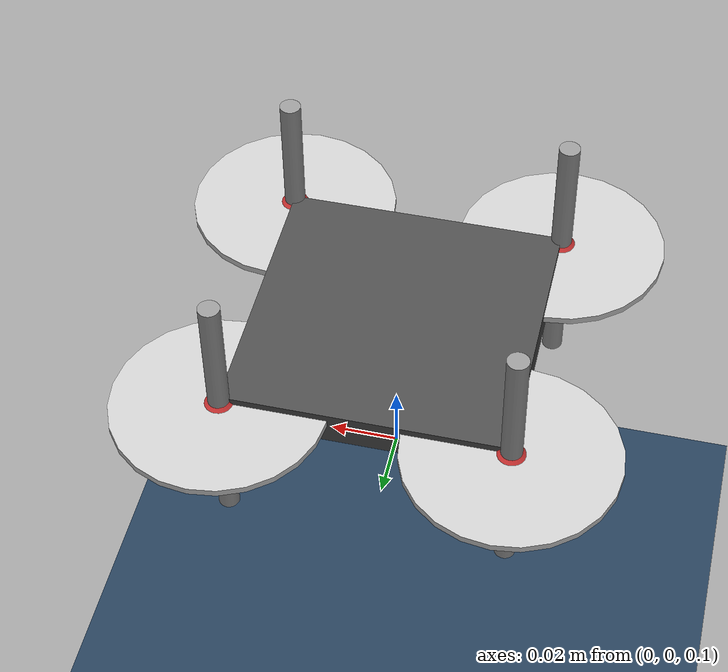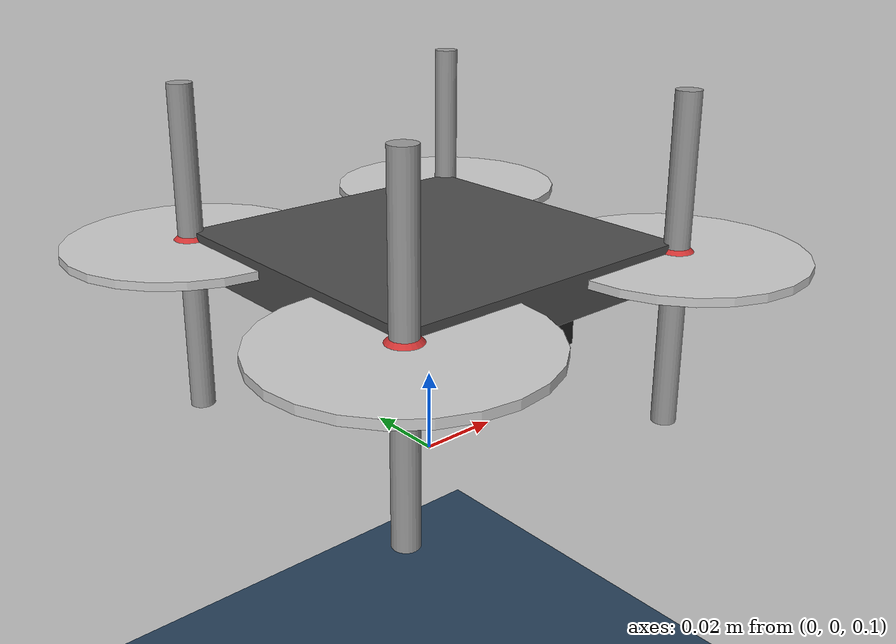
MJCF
<?xml version="1.0" ?>
<mujoco model="camera_quad">
    <compiler angle="radian" coordinate="local" inertiafromgeom="true"/>

    <option gravity="0 0 -9.81" density="1.293" viscosity="1.85e-5" integrator="RK4"/>

    <default>
        <joint damping="0.001" armature="0.001"/>
        <motor ctrlrange="0 1" ctrllimited="true"/>
        <site size="0.005" rgba="0.8 0.2 0.2 1"/>
    </default>

    <asset>
        <mesh name="arm" file="meshes/arm.stl" scale="1.2 1.2 1.2"/>
        <mesh name="motor" file="meshes/motor.stl" scale="1.2 1.2 1.2"/>
        <material name="body" rgba="0.3 0.3 0.3 1"/>
        <material name="arm" rgba="0.6 0.6 0.6 1"/>
        <material name="rotor" rgba="0.8 0.8 0.8 1"/>
        <material name="camera" rgba="0.1 0.1 0.1 1"/>
        <texture name="grid" type="2d" builtin="checker" rgb1=".1 .2 .3" rgb2=".2 .3 .4" width="512" height="512"/>
        <material name="grid" texture="grid" texrepeat="1 1" texuniform="true" reflectance=".2"/>
    </asset>

    <worldbody>
        <light diffuse="0.6 0.6 0.6" pos="0 0 3" dir="0 0 -1"/>
        <camera name="fixed" pos="2 0 1" xyaxes="-1 0 0 0 1 0"/>

        <!-- Ground plane with grid texture -->
        <geom name="floor" type="plane" material="grid" pos="0 0 0" size="5 5 0.1"/>

        <body name="quadcopter" pos="0 0 0.15">
            <joint name="root_x" type="slide" axis="1 0 0" pos="0 0 0"/>
            <joint name="root_y" type="slide" axis="0 1 0" pos="0 0 0"/>
            <joint name="root_z" type="slide" axis="0 0 1" pos="0 0 0"/>
            <joint name="root_rotx" type="hinge" axis="1 0 0" pos="0 0 0"/>
            <joint name="root_roty" type="hinge" axis="0 1 0" pos="0 0 0"/>
            <joint name="root_rotz" type="hinge" axis="0 0 1" pos="0 0 0"/>

            <!-- Central body -->
            <geom type="box" size="0.04 0.04 0.005" material="body" mass="0.1"/>

            <!-- Arms -->
            <body name="arm1" pos="0.04 0.04 0">
                <geom type="cylinder" size="0.003 0.04" pos="0 0 0" quat="0.924 0 0 0.383" material="arm" mass="0.02"/>
                <site name="motor1" pos="0 0 0"/>
                <geom name="prop1" type="cylinder" size="0.03 0.001" pos="0 0 0.002" material="rotor" mass="0.005"/>
            </body>
            <body name="arm2" pos="-0.04 0.04 0">
                <geom type="cylinder" size="0.003 0.04" pos="0 0 0" quat="0.383 0 0 0.924" material="arm" mass="0.02"/>
                <site name="motor2" pos="0 0 0"/>
                <geom name="prop2" type="cylinder" size="0.03 0.001" pos="0 0 0.002" material="rotor" mass="0.005"/>
            </body>
            <body name="arm3" pos="-0.04 -0.04 0">
                <geom type="cylinder" size="0.003 0.04" pos="0 0 0" quat="0.924 0 0 -0.383" material="arm" mass="0.02"/>
                <site name="motor3" pos="0 0 0"/>
                <geom name="prop3" type="cylinder" size="0.03 0.001" pos="0 0 0.002" material="rotor" mass="0.005"/>
            </body>
            <body name="arm4" pos="0.04 -0.04 0">
                <geom type="cylinder" size="0.003 0.04" pos="0 0 0" quat="0.383 0 0 -0.924" material="arm" mass="0.02"/>
                <site name="motor4" pos="0 0 0"/>
                <geom name="prop4" type="cylinder" size="0.03 0.001" pos="0 0 0.002" material="rotor" mass="0.005"/>
            </body>

            <!-- 3-axis Gimbal with Camera -->
            <body name="gimbal_yaw" pos="0.02 0 -0.02">
                <joint name="gimbal_yaw" type="hinge" axis="0 0 1" damping="0.1" armature="0.001"/>
                <geom type="cylinder" size="0.01 0.005" material="camera" mass="0.01"/>

                <body name="gimbal_pitch" pos="0 0 0">
                    <joint name="gimbal_pitch" type="hinge" axis="0 1 0" damping="0.1" armature="0.001"/>
                    <geom type="box" size="0.01 0.005 0.01" material="camera" mass="0.01"/>

                    <body name="gimbal_roll" pos="0.01 0 0">
                        <joint name="gimbal_roll" type="hinge" axis="1 0 0" damping="0.1" armature="0.001"/>
                        <geom type="box" size="0.01 0.01 0.01" material="camera" mass="0.02"/>
                        <camera name="main_cam" pos="0.01 0 0" xyaxes="0 0 1 0 1 0" fovy="60"/>
                    </body>
                </body>
            </body>

            <!-- Additional Fixed Cameras -->
            <camera name="front_cam" pos="0.04 0 0" xyaxes="0 -1 0 0 0 1" fovy="90"/>
            <camera name="down_cam" pos="0 0 -0.02" xyaxes="1 0 0 0 1 0" fovy="120"/>

            <!-- Sensors -->
            <site name="imu" pos="0 0 0"/>
        </body>
    </worldbody>

    <actuator>
        <!-- Motors -->
        <motor name="motor1" site="motor1" gear="0.2 0 0 0 0 1"/>
        <motor name="motor2" site="motor2" gear="0.2 0 0 0 0 -1"/>
        <motor name="motor3" site="motor3" gear="0.2 0 0 0 0 1"/>
        <motor name="motor4" site="motor4" gear="0.2 0 0 0 0 -1"/>

        <!-- Gimbal motors -->
        <motor name="gimbal_yaw_motor" joint="gimbal_yaw" gear="0.01"/>
        <motor name="gimbal_pitch_motor" joint="gimbal_pitch" gear="0.01"/>
        <motor name="gimbal_roll_motor" joint="gimbal_roll" gear="0.01"/>
    </actuator>

    <sensor>
        <!-- Standard sensors -->
        <accelerometer name="accelerometer" site="imu"/>
        <gyro name="gyro" site="imu"/>
        <velocimeter name="velocimeter" site="imu"/>
        <force name="force1" site="motor1"/>
        <force name="force2" site="motor2"/>
        <force name="force3" site="motor3"/>
        <force name="force4" site="motor4"/>
        <torque name="torque1" site="motor1"/>
        <torque name="torque2" site="motor2"/>
        <torque name="torque3" site="motor3"/>
        <torque name="torque4" site="motor4"/>
        <framequat name="orientation" objtype="site" objname="imu"/>

        <!-- Camera sensors -->
        <camera name="main" mode="rgb" camera="main_cam"/>
        <camera name="main_depth" mode="depth" camera="main_cam"/>
        <camera name="front" mode="rgb" camera="front_cam"/>
        <camera name="down" mode="rgb" camera="down_cam"/>

        <!-- Gimbal sensors -->
        <jointpos name="gimbal_yaw_pos" joint="gimbal_yaw"/>
        <jointpos name="gimbal_pitch_pos" joint="gimbal_pitch"/>
        <jointpos name="gimbal_roll_pos" joint="gimbal_roll"/>
    </sensor>
</mujoco>
